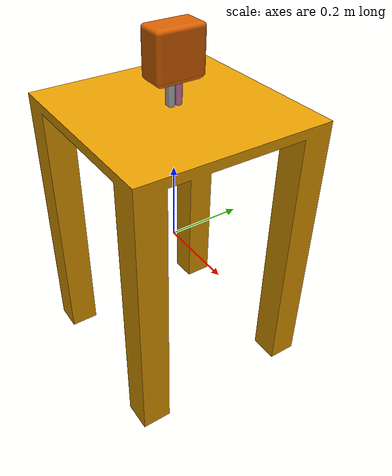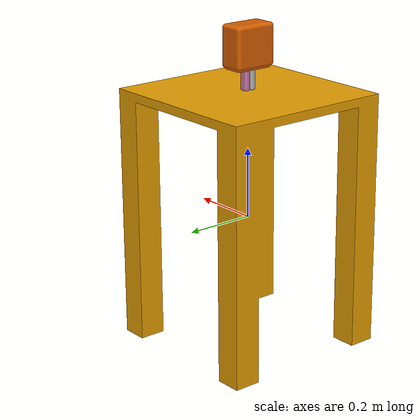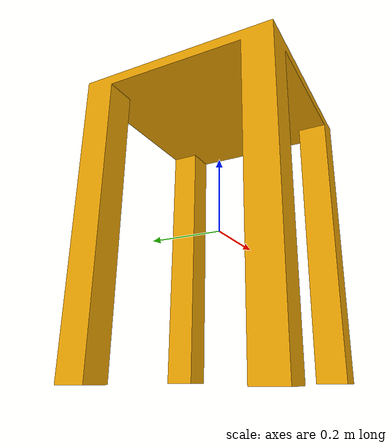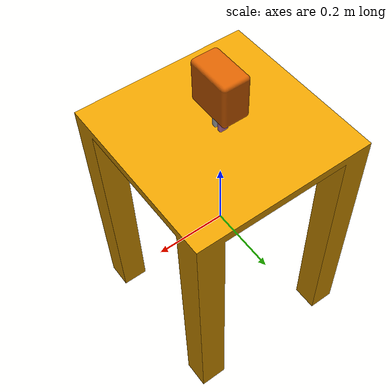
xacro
<?xml version="1.0"?>
<robot xmlns:xacro="http://www.ros.org/wiki/xacro" name="cartesian_envrionment">
<!-- some urdf stuff commented out now that we're an xacro -->
<!--robot name="cartesian_envrionment"-->
    <link name="base_link">
        <visual>
            <geometry>
                <mesh filename="file://$(cwd)/meshes/table.stl"/>
            </geometry>
        </visual>
        <collision>
            <geometry>
                <mesh filename="file://$(cwd)/meshes/table.stl"/>
            </geometry>
        </collision>
        <inertial>
            <origin rpy="0 0 0" xyz="0 0 0" />
            <mass value="0" />
            <inertia ixx="0" ixy="0" ixz="0" iyy="0" iyz="0" izz="0"/>
        </inertial>
    </link>

    <joint name="start_pose_offset_fixed_joint" type="fixed">
        <parent link="base_link" />
        <child link="start_pose_offset_link" />
        <origin xyz="0 0 0" />
        <axis xyz="1 0 0" />
    </joint>

    <link name="start_pose_offset_link">
        <origin xyz="0 0 0" rpy="0 0 0" />
        <inertial>
            <origin rpy="0 0 0" xyz="0 0 0" />
            <mass value="0" />
            <inertia ixx="0" ixy="0" ixz="0" iyy="0" iyz="0" izz="0"/>
        </inertial>
    </link>

    <joint name="table_to_gripper_x" type="prismatic">
        <parent link="base_link" />
        <child link="x_to_y" />
        <origin xyz="0 0 0" rpy="0 0 0" />
        <limit effort="1000" lower="-50" upper="50" velocity="10" />
        <axis xyz="1 0 0" />
    </joint>

    <link name="x_to_y">
        <origin xyz="0 0 0" rpy="0 0 0"/>
        <inertial>
            <origin rpy="0 0 0" xyz="0 0 0" />
            <mass value="0" />
            <inertia ixx="0" ixy="0" ixz="0" iyy="0" iyz="0" izz="0"/>
        </inertial>
    </link>

    <joint name="table_to_gripper_y" type="prismatic">
        <parent link="x_to_y" />
        <child link="y_to_z" />
        <origin xyz="0 0 0" rpy="0 0 ${pi/2}" />
        <limit effort="1000" lower="-50" upper="50" velocity="10" />
        <axis xyz="1 0 0" />
    </joint>

    <link name="y_to_z">
        <origin xyz="0 0 0" rpy="0 0 0"/>
        <inertial>
            <origin rpy="0 0 0" xyz="0 0 0" />
            <mass value="0" />
            <inertia ixx="0" ixy="0" ixz="0" iyy="0" iyz="0" izz="0"/>
        </inertial>
    </link>

    <joint name="table_to_gripper_z" type="prismatic">
        <parent link="y_to_z" />
        <child link="prismatic_output" />
        <origin xyz="0 0 0" rpy="0 -${pi/2} 0 " />
        <limit effort="1000" lower="-50" upper="50" velocity="10" />
        <axis xyz="1 0 0" />
    </joint>

    <link name="prismatic_output">
        <origin xyz="0 0 0" rpy="0 0 0"/>
        <inertial>
            <origin rpy="0 0 0" xyz="0 0 0" />
            <mass value="0" />
            <inertia ixx="0" ixy="0" ixz="0" iyy="0" iyz="0" izz="0"/>
        </inertial>
    </link>

    <joint name="prismatic_to_gripper" type="fixed">
        <parent link="prismatic_output" />
        <child link="gripper_base" />
        <origin xyz="0.55 0.0 0.0" rpy="0 ${pi/2} 0" />
        <axis xyz="1 0 0" />
    </joint>

    <link name="gripper_base">
        <inertial>
            <origin rpy="0 0 0" xyz="0.000 -0.06 -0.0017"/>
            <mass value="1.5175" />
            <inertia ixx="0.0013" ixy="-0.0" ixz="0.0" iyy="0.0019" iyz="-0.0" izz="0.0024" />
        </inertial>
        <visual>
            <geometry>
                <mesh filename="file://$(cwd)/meshes/gripper_base.stl"/>
            </geometry>
        </visual>
        <collision>
            <geometry>
                <mesh filename="file://$(cwd)/meshes/gripper_base.stl"/>
            </geometry>
        </collision>
    </link>

    <joint name="gripper_to_finger_left" type="prismatic">
        <limit effort="1000" lower="0.0" upper="-0.048" velocity="0.1" />
        <parent link="gripper_base" />
        <child link="finger_left" />
        <origin xyz="0.01 0 -0.125" rpy="0 0 ${pi/2}" />
        <!--origin xyz="${0.048/2} 0 -0.125" rpy="0 0 ${pi/2}" /-->
        <axis xyz="0 1 0" />
    </joint>

    <joint name="gripper_to_finger_right" type="prismatic">
        <limit effort="1000" lower="0.048" upper="0.0" velocity="0.1" />
        <parent link="gripper_base" />
        <child link="finger_right" />
        <origin xyz="-0.01 0 -0.125" rpy="0 0 ${pi/2}" />
        <!--origin xyz="${-0.048/2} 0 -0.125" rpy="0 0 ${pi/2}" /-->
        <axis xyz="0 1 0" />
    </joint>

    <link name="finger_left">
        <inertial>
            <origin rpy="0 0 0" xyz="-0.01 0 0" />
            <mass value="0.0798" />
            <inertia ixx="0.002" ixy="0" ixz="0" iyy="0" iyz="0" izz="0" />
        </inertial>
        <visual>
            <geometry>
                <mesh filename="file://$(cwd)/meshes/gripper_finger.stl"/>
            </geometry>
        </visual>
        <collision>
            <geometry>
                <mesh filename="file://$(cwd)/meshes/gripper_finger.stl"/>
            </geometry>
        </collision>
    </link>

    <link name="finger_right">
        <inertial>
            <origin rpy="0 0 0" xyz="-0.01 0 0" />
            <mass value="0.0798" />
            <inertia ixx="0.002" ixy="0" ixz="0" iyy="0" iyz="0" izz="0" />
        </inertial>
        <visual>
            <geometry>
                <mesh filename="file://$(cwd)/meshes/gripper_finger.stl"/>
            </geometry>
        </visual>
        <collision>
            <geometry>
                <mesh filename="file://$(cwd)/meshes/gripper_finger.stl"/>
            </geometry>
        </collision>
    </link>
</robot>
